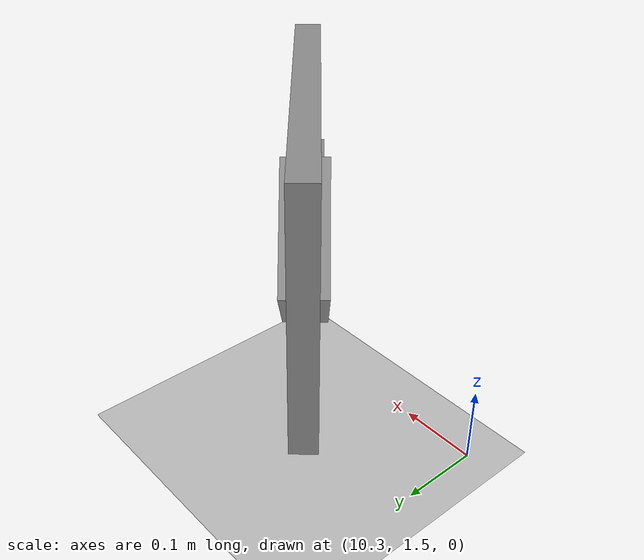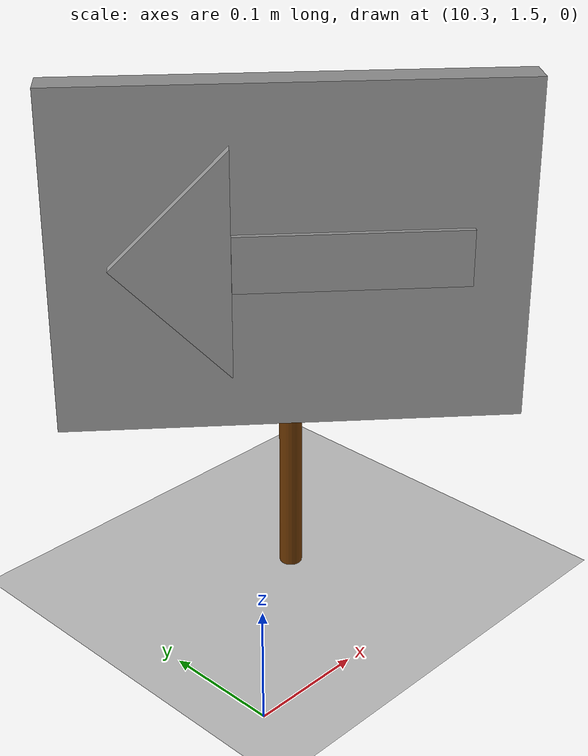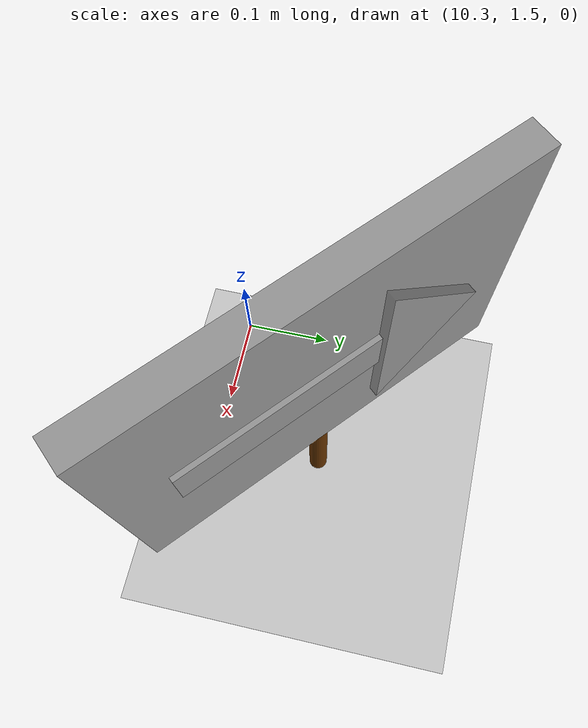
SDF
<sdf version="1.7">
 <world name="default">
  <model name="ground_plane">
   <static>1</static>
   <link name="link">
    <collision name="collision">
     <geometry><plane><normal>0 0 1</normal><size>100 100</size></plane></geometry>
     <surface>
      <contact><collide_bitmask>65535</collide_bitmask></contact>
      <friction><ode><mu>100</mu><mu2>50</mu2></ode></friction>
     </surface>
    </collision>
    <visual name="visual">
     <cast_shadows>0</cast_shadows>
     <geometry><plane><normal>0 0 1</normal><size>100 100</size></plane></geometry>
     <material>
      <script><uri>file://media/materials/scripts/gazebo.material</uri><name>Gazebo/Grey</name></script>
     </material>
    </visual>
   </link>
  </model>
  <model name="arrow_board_1">
   <link name="link_0">
    <inertial>
     <mass>1</mass>
     <inertia><ixx>0.145833</ixx><ixy>0</ixy><ixz>0</ixz><iyy>0.145833</iyy><iyz>0</iyz><izz>0.125</izz></inertia>
    </inertial>
    <pose>-0.01675 0.00625 0.1625 0 -0 0</pose>
    <gravity>0</gravity>
    <visual name="visual">
     <geometry><cylinder><radius>0.01</radius><length>0.3</length></cylinder></geometry>
     <material>
      <lighting>1</lighting>
      <script><uri>file://media/materials/scripts/gazebo.material</uri><name>Gazebo/Grey</name></script>
      <shader type="pixel"><normal_map>__default__</normal_map></shader>
      <ambient>0.4 0.2 0 1</ambient>
      <diffuse>0.4 0.2 0 1</diffuse>
      <specular>0 0 0 1</specular>
      <emissive>0 0 0 1</emissive>
     </material>
    </visual>
    <collision name="collision">
     <geometry><cylinder><radius>0.01</radius><length>0.3</length></cylinder></geometry>
     <surface>
      <friction>
       <ode><mu>1</mu><mu2>1</mu2><fdir1>0 0 0</fdir1><slip1>0</slip1><slip2>0</slip2></ode>
       <torsional>
        <coefficient>1</coefficient>
        <patch_radius>0</patch_radius>
        <surface_radius>0</surface_radius>
        <use_patch_radius>1</use_patch_radius>
        <ode><slip>0</slip></ode>
       </torsional>
      </friction>
      <bounce><restitution_coefficient>0</restitution_coefficient><threshold>1e+06</threshold></bounce>
      <contact>
       <collide_without_contact>0</collide_without_contact>
       <collide_without_contact_bitmask>1</collide_without_contact_bitmask>
       <collide_bitmask>1</collide_bitmask>
       <ode>
        <soft_cfm>0</soft_cfm>
        <soft_erp>0.2</soft_erp>
        <kp>1e+13</kp>
        <kd>1</kd>
        <max_vel>0.01</max_vel>
        <min_depth>0</min_depth>
       </ode>
       <bullet>
        <split_impulse>1</split_impulse>
        <split_impulse_penetration_threshold>-0.01</split_impulse_penetration_threshold>
        <soft_cfm>0</soft_cfm>
        <soft_erp>0.2</soft_erp>
        <kp>1e+13</kp>
        <kd>1</kd>
       </bullet>
      </contact>
     </surface>
    </collision>
   </link>
   <link name="link_1">
    <inertial>
     <mass>1</mass>
     <inertia>
      <ixx>0.166667</ixx>
      <ixy>0</ixy>
      <ixz>0</ixz>
      <iyy>0.166667</iyy>
      <iyz>0</iyz>
      <izz>0.166667</izz>
     </inertia>
    </inertial>
    <pose>-0.01675 0.00625 0.3125 0 -0 0</pose>
    <gravity>0</gravity>
    <visual name="visual">
     <geometry><box><size>0.4 0.03 0.3</size></box></geometry>
     <material>
      <lighting>1</lighting>
      <script><uri>file://media/materials/scripts/gazebo.material</uri><name>Gazebo/Grey</name></script>
      <shader type="pixel"><normal_map>__default__</normal_map></shader>
      <ambient>1 1 1 1</ambient>
      <diffuse>1 1 1 1</diffuse>
      <specular>1 1 1 1</specular>
      <emissive>0 0 0 1</emissive>
     </material>
    </visual>
    <collision name="collision">
     <geometry><box><size>0.4 0.03 0.3</size></box></geometry>
     <surface>
      <friction>
       <ode><mu>1</mu><mu2>1</mu2><fdir1>0 0 0</fdir1><slip1>0</slip1><slip2>0</slip2></ode>
       <torsional>
        <coefficient>1</coefficient>
        <patch_radius>0</patch_radius>
        <surface_radius>0</surface_radius>
        <use_patch_radius>1</use_patch_radius>
        <ode><slip>0</slip></ode>
       </torsional>
      </friction>
      <bounce><restitution_coefficient>0</restitution_coefficient><threshold>1e+06</threshold></bounce>
      <contact>
       <collide_without_contact>0</collide_without_contact>
       <collide_without_contact_bitmask>1</collide_without_contact_bitmask>
       <collide_bitmask>1</collide_bitmask>
       <ode>
        <soft_cfm>0</soft_cfm>
        <soft_erp>0.2</soft_erp>
        <kp>1e+13</kp>
        <kd>1</kd>
        <max_vel>0.01</max_vel>
        <min_depth>0</min_depth>
       </ode>
       <bullet>
        <split_impulse>1</split_impulse>
        <split_impulse_penetration_threshold>-0.01</split_impulse_penetration_threshold>
        <soft_cfm>0</soft_cfm>
        <soft_erp>0.2</soft_erp>
        <kp>1e+13</kp>
        <kd>1</kd>
       </bullet>
      </contact>
     </surface>
    </collision>
   </link>
   <link name="link_2">
    <inertial>
     <mass>1</mass>
     <inertia>
      <ixx>0.166667</ixx>
      <ixy>0</ixy>
      <ixz>0</ixz>
      <iyy>0.166667</iyy>
      <iyz>0</iyz>
      <izz>0.166667</izz>
     </inertia>
    </inertial>
    <pose>-0.06675 0.00625 0.3125 0 -0 0</pose>
    <gravity>0</gravity>
    <visual name="visual">
     <geometry><box><size>0.2 0.04 0.05</size></box></geometry>
     <material>
      <lighting>1</lighting>
      <script><uri>file://media/materials/scripts/gazebo.material</uri><name>Gazebo/Grey</name></script>
      <shader type="pixel"><normal_map>__default__</normal_map></shader>
      <ambient>0 0 0 1</ambient>
      <diffuse>0 0 0 1</diffuse>
      <specular>0 0 0 1</specular>
      <emissive>0 0 0 1</emissive>
     </material>
    </visual>
    <collision name="collision">
     <geometry><box><size>0.2 0.04 0.05</size></box></geometry>
     <surface>
      <friction>
       <ode><mu>1</mu><mu2>1</mu2><fdir1>0 0 0</fdir1><slip1>0</slip1><slip2>0</slip2></ode>
       <torsional>
        <coefficient>1</coefficient>
        <patch_radius>0</patch_radius>
        <surface_radius>0</surface_radius>
        <use_patch_radius>1</use_patch_radius>
        <ode><slip>0</slip></ode>
       </torsional>
      </friction>
      <bounce><restitution_coefficient>0</restitution_coefficient><threshold>1e+06</threshold></bounce>
      <contact>
       <collide_without_contact>0</collide_without_contact>
       <collide_without_contact_bitmask>1</collide_without_contact_bitmask>
       <collide_bitmask>1</collide_bitmask>
       <ode>
        <soft_cfm>0</soft_cfm>
        <soft_erp>0.2</soft_erp>
        <kp>1e+13</kp>
        <kd>1</kd>
        <max_vel>0.01</max_vel>
        <min_depth>0</min_depth>
       </ode>
       <bullet>
        <split_impulse>1</split_impulse>
        <split_impulse_penetration_threshold>-0.01</split_impulse_penetration_threshold>
        <soft_cfm>0</soft_cfm>
        <soft_erp>0.2</soft_erp>
        <kp>1e+13</kp>
        <kd>1</kd>
       </bullet>
      </contact>
     </surface>
    </collision>
   </link>
   <link name="link_4">
    <inertial>
     <mass>1</mass>
     <inertia>
      <ixx>0.166667</ixx>
      <ixy>0</ixy>
      <ixz>0</ixz>
      <iyy>0.166667</iyy>
      <iyz>0</iyz>
      <izz>0.166667</izz>
     </inertia>
    </inertial>
    <pose>0.033583 -0.01875 0.2125 0 -0 0</pose>
    <gravity>0</gravity>
    <visual name="visual">
     <geometry>
      <mesh>
       <uri>/home/ritesh/mobrob_ws/src/mobrob/meshes/arrow_head.stl</uri>
       <scale>0.001 0.001 0.001</scale>
      </mesh>
     </geometry>
     <material>
      <lighting>1</lighting>
      <script><uri>file://media/materials/scripts/gazebo.material</uri><name>Gazebo/Grey</name></script>
      <shader type="pixel"><normal_map>__default__</normal_map></shader>
      <ambient>0 0 0 1</ambient>
      <diffuse>0 0 0 1</diffuse>
      <specular>0 0 0 1</specular>
      <emissive>0 0 0 1</emissive>
     </material>
    </visual>
    <collision name="collision">
     <geometry>
      <mesh>
       <uri>/home/ritesh/mobrob_ws/src/mobrob/meshes/arrow_head.stl</uri>
       <scale>0.001 0.001 0.001</scale>
      </mesh>
     </geometry>
     <surface>
      <friction>
       <ode><mu>1</mu><mu2>1</mu2><fdir1>0 0 0</fdir1><slip1>0</slip1><slip2>0</slip2></ode>
       <torsional>
        <coefficient>1</coefficient>
        <patch_radius>0</patch_radius>
        <surface_radius>0</surface_radius>
        <use_patch_radius>1</use_patch_radius>
        <ode><slip>0</slip></ode>
       </torsional>
      </friction>
      <bounce><restitution_coefficient>0</restitution_coefficient><threshold>1e+06</threshold></bounce>
      <contact>
       <collide_without_contact>0</collide_without_contact>
       <collide_without_contact_bitmask>1</collide_without_contact_bitmask>
       <collide_bitmask>1</collide_bitmask>
       <ode>
        <soft_cfm>0</soft_cfm>
        <soft_erp>0.2</soft_erp>
        <kp>1e+13</kp>
        <kd>1</kd>
        <max_vel>0.01</max_vel>
        <min_depth>0</min_depth>
       </ode>
       <bullet>
        <split_impulse>1</split_impulse>
        <split_impulse_penetration_threshold>-0.01</split_impulse_penetration_threshold>
        <soft_cfm>0</soft_cfm>
        <soft_erp>0.2</soft_erp>
        <kp>1e+13</kp>
        <kd>1</kd>
       </bullet>
      </contact>
     </surface>
    </collision>
   </link>
   <static>0</static>
   <pose>10.451 1.64088 -0 0 -0 2.42351</pose>
  </model>
 </world>
</sdf>
